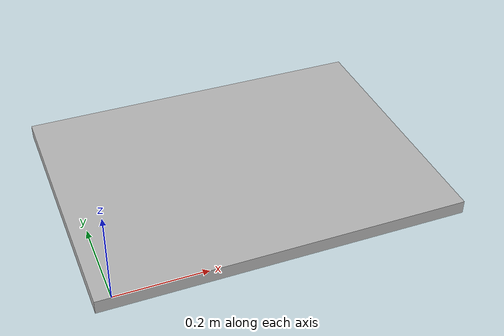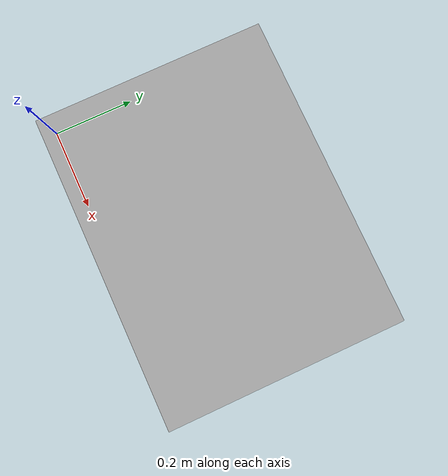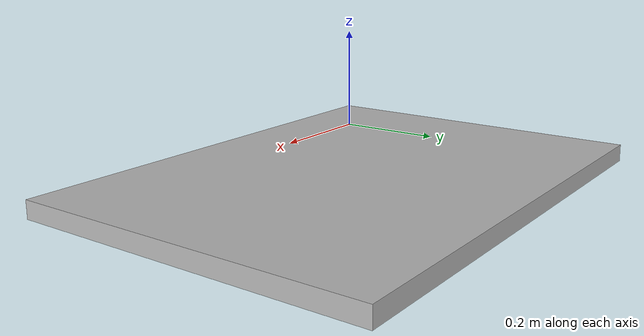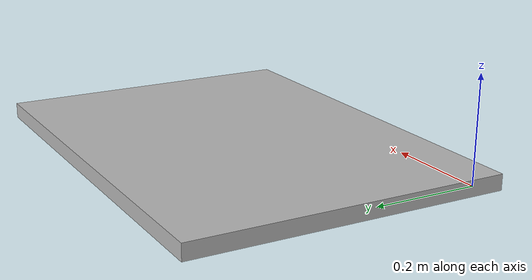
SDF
<?xml version="1.0"?>
<sdf version="1.4">
  <model name="charuco_800x600_9x12_60_45_DICT_5X5">
    <static>1</static>
    <link name="charuco">
      <pose>0 0 0 0 0 0</pose>
      <visual name="visual">
        <geometry>
          <mesh>
            <uri>model://charuco_800x600_9x12_60_45_DICT_5X5/model.dae</uri>
          </mesh>
        </geometry>
      </visual>
      <collision name="collision">
        <geometry>
          <mesh>
            <uri>model://charuco_800x600_9x12_60_45_DICT_5X5/model.dae</uri>
          </mesh>
        </geometry>
      </collision>
    </link>
  </model>
</sdf>
